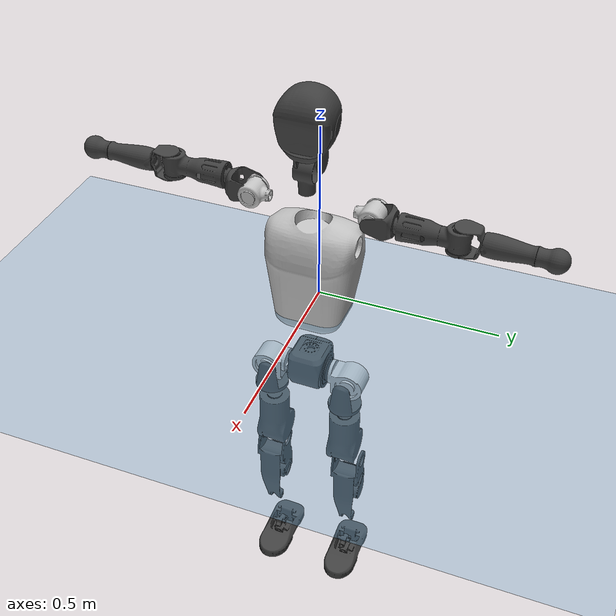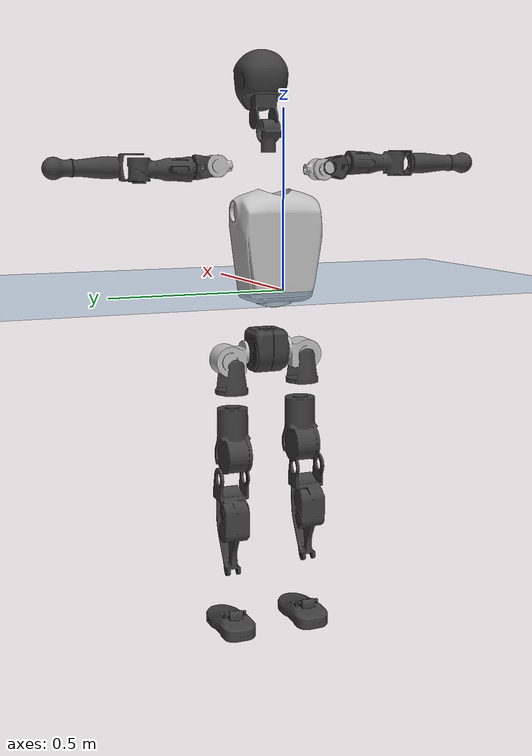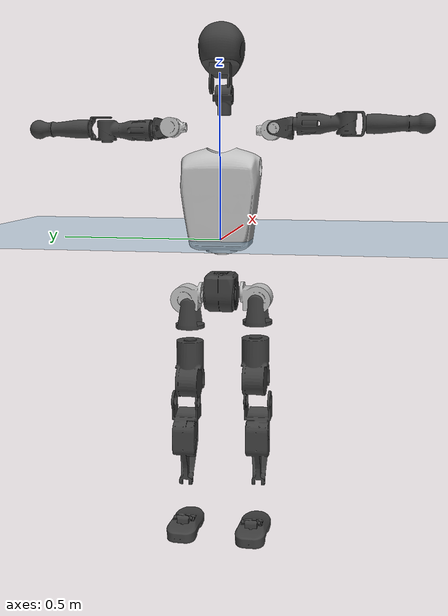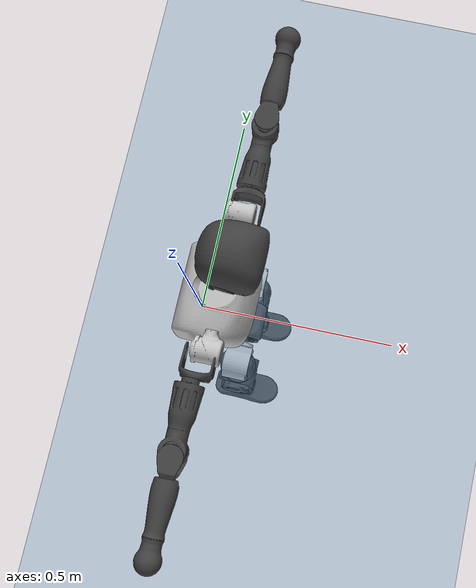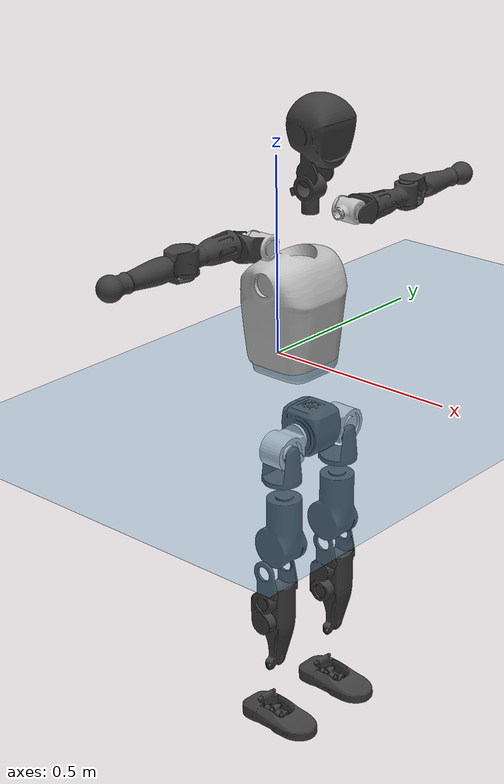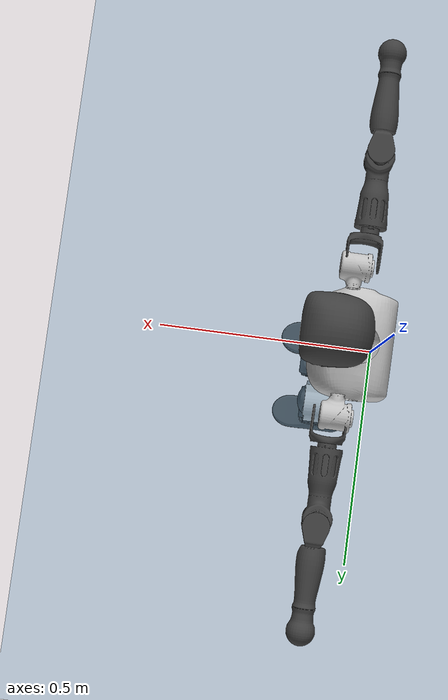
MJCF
<mujoco model="T1">
  <compiler angle="radian" assetdir="assets" balanceinertia="true" inertiafromgeom="false"/>

  <option timestep="0.005" density="1.2" viscosity="2e-05"/>

  <size nkey="1"/>

  <visual>
    <quality shadowsize="8192"/>
    <map shadowclip="0.5"/>
  </visual>

  <default>
    <default class="/">
      <joint armature="0.01" damping="0.01" frictionloss="0.1"/>
      <geom contype="0" conaffinity="0" group="1" solref="-1000 -80"/>
      <site size="0.01 0.005 0.005" group="5"/>
      <general forcelimited="true" biastype="affine" gainprm="25" biasprm="0 -25 -0.6"/>
      <default class="t1">
        <geom rgba="0.25 0.25 0.25 1"/>
        <default class="visual">
          <geom type="mesh" group="2"/>
        </default>
        <default class="collision">
          <geom group="3"/>
        </default>
        <default class="foot">
          <geom size="0.1115 0.05 0.015" type="box" condim="6" group="4" priority="1" solimp="0.015 1 0.015"/>
        </default>
        <default class="reward_collision_sphere">
          <geom group="5" rgba="1 0 0 1"/>
        </default>
      </default>
    </default>
  </default>

  <asset>
    <texture type="skybox" colorspace="auto" name="//unnamed_texture_0" builtin="gradient" rgb1="0.95 0.95 0.95" rgb2="0.95 0.95 0.95" width="100" height="600"/>
    <texture type="2d" colorspace="auto" name="texplane" builtin="checker" rgb1="0.345 0.575 0.748" rgb2="0.345 0.575 0.748" markrgb="1 1 1" width="512" height="512"/>
    <material name="MatPlane" class="/" texture="texplane" texuniform="true" texrepeat="2 2" specular="0.9"/>
    <mesh name="Trunk" class="/" file="Trunk.stl"/>
    <mesh name="H1" class="/" file="H1.stl"/>
    <mesh name="H2" class="/" file="H2.stl"/>
    <mesh name="AL1" class="/" file="AL1.stl"/>
    <mesh name="AL2" class="/" file="AL2.stl"/>
    <mesh name="AL3" class="/" file="AL3.stl"/>
    <mesh name="left_hand_link" class="/" file="left_hand_link.stl"/>
    <mesh name="AR1" class="/" file="AR1.stl"/>
    <mesh name="AR2" class="/" file="AR2.stl"/>
    <mesh name="AR3" class="/" file="AR3.stl"/>
    <mesh name="right_hand_link" class="/" file="right_hand_link.stl"/>
    <mesh name="Waist" class="/" file="Waist.stl"/>
    <mesh name="Hip_Pitch_Left" class="/" file="Hip_Pitch_Left.stl"/>
    <mesh name="Hip_Roll_Left" class="/" file="Hip_Roll_Left.stl"/>
    <mesh name="Hip_Yaw_Left" class="/" file="Hip_Yaw_Left.stl"/>
    <mesh name="Shank_Left" class="/" file="Shank_Left.stl"/>
    <mesh name="Ankle_Cross_Left" class="/" file="Ankle_Cross_Left.stl"/>
    <mesh name="left_foot_link" class="/" file="left_foot_link.stl"/>
    <mesh name="Hip_Pitch_Right" class="/" file="Hip_Pitch_Right.stl"/>
    <mesh name="Hip_Roll_Right" class="/" file="Hip_Roll_Right.stl"/>
    <mesh name="Hip_Yaw_Right" class="/" file="Hip_Yaw_Right.stl"/>
    <mesh name="Shank_Right" class="/" file="Shank_Right.stl"/>
    <mesh name="Ankle_Cross_Right" class="/" file="Ankle_Cross_Right.stl"/>
    <mesh name="right_foot_link" class="/" file="right_foot_link.stl"/>
  </asset>

  <worldbody>
    <geom name="floor" class="/" size="100 100 0.125" type="plane" group="0" material="MatPlane"/>
    <light name="toplight_shadow" class="/" pos="0 0 5" dir="0.0990148 0.0990148 -0.990148" type="directional" ambient="0.04 0.04 0.04" diffuse="0.55 0.55 0.55" specular="0.12 0.12 0.12"/>
    <light name="toplight_fill" class="/" pos="0 0 5" dir="0.0990148 0.0990148 -0.990148" type="directional" castshadow="false" ambient="0.04 0.04 0.04" diffuse="0.3 0.3 0.3" specular="0.08 0.08 0.08"/>
    <body name="trunk" childclass="t1" pos="-0.000445935 0.00499564 0.00100568" quat="0.999992 -0.0011213 -0.000812574 -0.00363577">
      <inertial pos="0.0818807 0.00312745 0.157707" quat="0.998921 0.0189988 -0.0407509 0.0116121" mass="29.7705" diaginertia="0.500061 0.117187 0.391014"/>
      <joint name="//unnamed_joint_0" type="free" armature="0" damping="0" frictionloss="0"/>
      <geom name="//unnamed_geom_1" class="visual" rgba="0.76 0.76 0.76 1" mesh="Trunk"/>
      <geom name="//unnamed_geom_2" class="collision" size="0.10231 0.136413 0.204619" pos="0.0892127 0 0.181627" type="box"/>
      <geom name="//unnamed_geom_3" class="reward_collision_sphere" size="0.156875" pos="0.0892127 0 0.151356"/>
      <geom name="//unnamed_geom_4" class="reward_collision_sphere" size="0.0204619" pos="0.0892127 0.0928153 0"/>
      <geom name="//unnamed_geom_5" class="reward_collision_sphere" size="0.0204619" pos="0.0892127 -0.0928153 0"/>
      <geom name="//unnamed_geom_6" class="reward_collision_sphere" size="0.0204619" pos="0.0892127 0.116838 0.272441"/>
      <geom name="//unnamed_geom_7" class="reward_collision_sphere" size="0.0204619" pos="0.0892127 -0.116838 0.272441"/>
      <site name="imu" pos="-0.0371454 -0.000781813 0.0363485" size="0.0136413"/>
      <camera name="track" pos="0 -2.18389 0" quat="0.707107 0.707107 0 0" mode="trackcom"/>
      <camera name="ego_camera" pos="0.181399 0 0.635695" quat="-0.5 -0.5 0.5 0.5"/>
      <body name="H1" pos="0.101441 -0.000996017 0.378607" quat="1 0.000544393 -0.00029469 7.48292e-06">
        <inertial pos="-0.000597115 -0.0025668 0.0866796" quat="0.760424 -0.0178371 -0.00232715 0.649178" mass="1.11152" diaginertia="0.00185188 0.00033107 0.00118569"/>
        <joint name="AAHead_yaw" pos="0 0 0" axis="-0.000126243 0.00201038 0.999998" range="-1.71798 1.59756" armature="0.00632603" damping="0.0127138" frictionloss="0.0672473"/>
        <geom name="//unnamed_geom_8" class="visual" mesh="H1"/>
        <body name="H2" pos="0.00401811 0.0128265 0.095364" quat="0.999998 0.000565882 0.000795934 -0.00149625">
          <inertial pos="0.00299053 0.0103606 0.16115" quat="0.982364 0.113719 -0.113059 -0.0961635" mass="1.5387" diaginertia="0.0150674 0.00348512 0.0141415"/>
          <joint name="Head_pitch" pos="0 0 0" axis="-0.00718281 -0.999897 0.012416" stiffness="0.000332846" range="-1.22138 0.3847" armature="0.00931922" damping="0.0594082" frictionloss="0.136938"/>
          <geom name="//unnamed_geom_9" class="visual" mesh="H2"/>
          <geom name="//unnamed_geom_10" class="collision" size="0.10913" pos="0.0148688 0 0.166492"/>
          <geom name="//unnamed_geom_11" class="reward_collision_sphere" size="0.122771" pos="0.0297376 0 0.151356"/>
        </body>
      </body>
      <body name="AL1" pos="0.0846865 0.117586 0.34217" quat="0.999982 -0.000688862 0.00564461 -0.00212716">
        <inertial pos="0.00544769 0.0495207 -0.000710585" quat="0.504561 0.495299 -0.504244 0.495818" mass="1.44358" diaginertia="0.0105922 0.0024425 0.00276377"/>
        <joint name="Left_Shoulder_Pitch" pos="0 0 0" axis="0.0107347 0.999281 0.036351" stiffness="0.00062099" range="-3.19567 0.994321" armature="0.0131995" damping="0.0604726" frictionloss="0.10082"/>
        <geom name="//unnamed_geom_12" class="visual" rgba="0.76 0.76 0.76 1" mesh="AL1"/>
        <body name="AL2" pos="0.0101096 0.0481274 -0.00304918" quat="1 5.73351e-05 -0.000169336 0.00012889">
          <inertial pos="0.00980067 0.0308496 0.00477812" quat="0.487794 0.511207 -0.489309 0.511176" mass="0.371762" diaginertia="0.00273971 0.000488128 0.00138291"/>
          <joint name="Left_Shoulder_Roll" pos="0 0 0" axis="-0.999999 0.00109734 0.000242321" stiffness="0.0632522" range="-1.66826 1.75569" armature="0.0060168" damping="0.0178232" frictionloss="0.138546"/>
          <geom name="//unnamed_geom_13" class="visual" mesh="AL2"/>
          <body name="AL3" pos="-0.00273602 0.0655387 -0.0054721" quat="1 0.000253645 0.000544626 0.000300635">
            <inertial pos="-0.00969825 0.103898 -0.00372629" quat="0.686657 0.726967 -0.00435689 0.00135269" mass="3.22736" diaginertia="0.0915272 0.0222485 0.00597971"/>
            <joint name="Left_Elbow_Pitch" pos="0 0 0" axis="-0.018837 -0.999731 0.0134959" stiffness="0.0186384" range="-2.03976 2.34353" armature="0.00513367" damping="0.0200369" frictionloss="0.125923"/>
            <geom name="//unnamed_geom_14" class="visual" mesh="AL3"/>
            <geom name="//unnamed_geom_15" class="collision" size="0.0409238 0.10231" pos="0 0.0545972 0" quat="0.707105 0.707108 0 0" type="cylinder"/>
            <geom name="//unnamed_geom_16" class="reward_collision_sphere" size="0.0491086"/>
            <body name="left_hand_link" pos="0.0015566 0.160043 0.00662838" quat="0.999984 -0.00379142 0.0023626 -0.0033906">
              <inertial pos="0.0114696 0.115752 -0.000578614" quat="0.712593 0.701563 0.0034114 -0.00292969" mass="0.808299" diaginertia="0.0661157 0.0119305 0.00148491"/>
              <joint name="Left_Elbow_Yaw" pos="0 0 0" axis="-0.00219265 -0.000206842 0.999998" range="-2.45497 0.234901" armature="0.013647" damping="0" frictionloss="0.147173"/>
              <geom name="//unnamed_geom_17" class="visual" mesh="left_hand_link"/>
              <geom name="//unnamed_geom_18" class="collision" size="0.0409238 0.119361" pos="0 0.141953 0" quat="0.707105 0.707108 0 0" type="cylinder"/>
              <geom name="//unnamed_geom_19" class="reward_collision_sphere" size="0.0682064"/>
              <geom name="//unnamed_geom_20" class="reward_collision_sphere" size="0.0477445" pos="0 0.120114 0"/>
              <geom name="//unnamed_geom_21" class="reward_collision_sphere" size="0.0477445" pos="0 0.234768 0"/>
            </body>
          </body>
        </body>
      </body>
      <body name="AR1" pos="0.0820807 -0.105854 0.331456" quat="0.999999 -0.000743233 -0.0009085 -0.000932978">
        <inertial pos="0.00541392 -0.0365199 0.00163305" quat="0.505844 0.518029 -0.483458 0.491971" mass="1.45219" diaginertia="0.0117269 0.0022057 0.00247205"/>
        <joint name="Right_Shoulder_Pitch" pos="0 0 0" axis="-0.0136283 -0.998908 0.0446948" stiffness="0.0617899" range="-1.20286 3.41448" armature="0.00720857" damping="0.0249218" frictionloss="0.167978"/>
        <geom name="//unnamed_geom_22" class="visual" rgba="0.76 0.76 0.76 1" mesh="AR1"/>
        <body name="AR2" pos="-0.0117112 -0.0579368 0.00584582" quat="0.999987 0.0027368 0.00430897 -0.000106175">
          <inertial pos="0.0122951 -0.0396904 0.00331517" quat="0.508945 0.504474 -0.510786 0.474951" mass="0.455555" diaginertia="0.00288965 0.000464602 0.00141779"/>
          <joint name="Right_Shoulder_Roll" pos="0 0 0" axis="-0.999982 -0.00346071 -0.00490746" range="-1.80529 1.51375" armature="0.0149184" damping="0" frictionloss="0.0502846"/>
          <geom name="//unnamed_geom_23" class="visual" mesh="AR2"/>
          <body name="AR3" pos="-0.00600208 -0.0692415 0.0128918" quat="1 -7.43809e-05 -6.568e-06 -0.000145115">
            <inertial pos="0.00140206 -0.0828991 0.00398518" quat="0.709014 0.703594 -0.0248498 -0.0404617" mass="2.63923" diaginertia="0.0956735 0.0205943 0.00441655"/>
            <joint name="Right_Elbow_Pitch" pos="0 0 0" axis="0.0444814 0.998814 0.0197763" range="-2.07513 2.38782" armature="0.0211626" damping="0.0108258" frictionloss="0.0910376"/>
            <geom name="//unnamed_geom_24" class="visual" mesh="AR3"/>
            <geom name="//unnamed_geom_25" class="collision" size="0.0409238 0.10231" pos="0 -0.0545972 0" quat="0.707105 0.707108 0 0" type="cylinder"/>
            <geom name="//unnamed_geom_26" class="reward_collision_sphere" size="0.0491086"/>
            <body name="right_hand_link" pos="0.000711683 -0.160999 -0.00121717" quat="0.99999 -0.00208812 0.000726083 0.00377101">
              <inertial pos="0.00112762 -0.115065 -0.00953843" quat="0.706332 0.70788 -0.000121785 -0.000810727" mass="0.885166" diaginertia="0.062393 0.0135344 0.00180973"/>
              <joint name="Right_Elbow_Yaw" pos="0 0 0" axis="-0.0108627 -0.0296519 0.999501" range="-0.0206621 2.3049" armature="0.00658318" damping="0.0705741" frictionloss="0.0842075"/>
              <geom name="//unnamed_geom_27" class="visual" mesh="right_hand_link"/>
              <geom name="//unnamed_geom_28" class="collision" size="0.0409238 0.119361" pos="0 -0.141953 0" quat="0.707105 0.707108 0 0" type="cylinder"/>
              <geom name="//unnamed_geom_29" class="reward_collision_sphere" size="0.0682064"/>
              <geom name="//unnamed_geom_30" class="reward_collision_sphere" size="0.0477445" pos="0 -0.120114 0"/>
              <geom name="//unnamed_geom_31" class="reward_collision_sphere" size="0.0477445" pos="0 -0.234768 0"/>
            </body>
          </body>
        </body>
      </body>
      <body name="Waist" pos="0.0964346 0.0089495 -0.18645" quat="1 7.19222e-05 -0.000122996 -0.000430982">
        <inertial pos="0.0135093 0.00107422 0.0106885" quat="0.983718 0.0381625 -0.173504 -0.0271907" mass="7.53164" diaginertia="0.0450265 0.00940428 0.0427738"/>
        <joint name="Waist" pos="0 0 0" axis="0.0219725 -0.0439613 0.998792" stiffness="0.0277417" range="-1.58725 1.77221" armature="0.0147753" damping="0" frictionloss="0.0717181"/>
        <geom name="//unnamed_geom_32" class="visual" mesh="Waist"/>
        <body name="Hip_Pitch_Left" pos="0.00146462 0.118044 0.0010474" quat="0.999997 0.000501743 0.00183523 -0.00156817">
          <inertial pos="0.0007257 -0.0034463 -0.0283658" quat="0.976474 0.215133 0.0141568 0.00389993" mass="2.47548" diaginertia="0.013069 0.00199021 0.00954826"/>
          <joint name="Left_Hip_Pitch" pos="0 0 0" axis="-0.0434207 0.997927 -0.0474984" stiffness="0.0567374" range="-1.77683 1.34319" armature="0.0102973" damping="0.0524465" frictionloss="0.126181"/>
          <geom name="//unnamed_geom_33" class="visual" rgba="0.76 0.76 0.76 1" mesh="Hip_Pitch_Left"/>
          <body name="Hip_Roll_Left" pos="0.00254534 -0.0129611 -0.0394705" quat="0.999981 0.000860248 0.00574457 0.00228465">
            <inertial pos="0.0102391 0.00160824 -0.0820408" quat="0.698868 -0.0118197 -0.00355223 0.715144" mass="1.13713" diaginertia="0.012684 0.00274776 0.00466845"/>
            <joint name="Left_Hip_Roll" pos="0 0 0" axis="-0.998414 0.0319608 -0.0463528" range="-1.64726 0.163822" armature="0.0168665" damping="0.00236059" frictionloss="0.142024"/>
            <geom name="//unnamed_geom_34" class="visual" mesh="Hip_Roll_Left"/>
            <geom name="//unnamed_geom_35" class="reward_collision_sphere" size="0.075027"/>
            <body name="Hip_Yaw_Left" pos="-0.00360787 -0.000128142 -0.11997" quat="1 -8.48026e-05 0.000132984 -2.48146e-05">
              <inertial pos="-0.0098779 -0.00185576 -0.135525" quat="0.713165 -0.068928 0.00416354 0.697586" mass="6.51676" diaginertia="0.188267 0.0444245 0.0232169"/>
              <joint name="Left_Hip_Yaw" pos="0 0 0" axis="0.00626502 0.00152931 -0.999979" range="-0.848934 1.04401" armature="0.0139001" damping="0" frictionloss="0.141057"/>
              <geom name="//unnamed_geom_36" class="visual" mesh="Hip_Yaw_Left"/>
              <geom name="//unnamed_geom_37" class="collision" size="0.0682064 0.10913" type="cylinder"/>
              <body name="Shank_Left" pos="-0.0178233 0.0101848 -0.20065" quat="1 0.00052491 0.000353166 -0.000771798">
                <inertial pos="-0.0053991 0.00839139 -0.189092" quat="0.999627 -0.00524694 -0.0035008 0.0265641" mass="3.77897" diaginertia="0.233038 0.0485902 0.0154369"/>
                <joint name="Left_Knee_Pitch" pos="0 0 0" axis="-0.00432051 0.999883 0.0147027" range="-0.0676595 2.43895" armature="0.00721122" damping="0.0452969" frictionloss="0.147006"/>
                <geom name="//unnamed_geom_38" class="visual" mesh="Shank_Left"/>
                <geom name="//unnamed_geom_39" class="collision" size="0.0682064 0.10231" pos="0 0 -0.181627" type="cylinder"/>
                <geom name="//unnamed_geom_40" class="reward_collision_sphere" size="0.0886683"/>
                <body name="Ankle_Cross_Left" pos="0.000690806 -0.00746978 -0.41485" quat="0.999987 0.00159464 -0.00322252 0.00359272">
                  <inertial pos="-0.000925357 0.0118936 -0.0121101" quat="0.44734 0.535235 0.579736 0.421089" mass="0.182455" diaginertia="0.000202786 3.45364e-05 8.04233e-05"/>
                  <joint name="Left_Ankle_Pitch" pos="0 0 0" axis="0.0266612 0.99946 -0.0192123" stiffness="0.00680568" range="-0.891152 0.298746" armature="0.0154803" damping="0" frictionloss="0.141256"/>
                  <geom name="//unnamed_geom_41" class="visual" mesh="Ankle_Cross_Left"/>
                  <body name="left_foot_link" pos="0.00904122 0.0115994 -0.0153013" quat="0.999999 -0.000514232 -0.00059894 -0.000650348">
                    <inertial pos="-0.0100923 -0.00119459 -0.0261271" quat="-0.000328043 0.626961 -0.00182098 0.779049" mass="1.78856" diaginertia="0.0202624 0.00374806 0.0184659"/>
                    <joint name="Left_Ankle_Roll" pos="0 0 0" axis="-0.99996 -0.00730092 0.00525661" range="-0.478279 0.442741" armature="0.0209087" damping="0.0371656" frictionloss="0.125251"/>
                    <geom name="//unnamed_geom_42" class="visual" mesh="left_foot_link"/>
                    <geom name="left_foot" class="foot" size="0.117261 0.089601 0.0191371" pos="0.0148688 0 -0.0227034"/>
                    <geom name="//unnamed_geom_44" class="reward_collision_sphere" size="0.0709346" pos="0.0148688 0 -0.0227034"/>
                    <geom name="//unnamed_geom_45" class="reward_collision_sphere" size="0.0409238" pos="0.141253 -0.0251147 -0.0227034"/>
                    <geom name="//unnamed_geom_46" class="reward_collision_sphere" size="0.0409238" pos="-0.104081 -0.0251147 -0.0227034"/>
                    <site name="left_foot" class="foot" pos="0.0148688 0 -0.0227034" size="0.0136413"/>
                  </body>
                </body>
              </body>
            </body>
          </body>
        </body>
        <body name="Hip_Pitch_Right" pos="0.00836428 -0.119097 0.0066709" quat="0.999981 -0.00456282 -0.00185577 -0.0036436">
          <inertial pos="0.00140246 0.0212241 -0.0275672" quat="0.968328 -0.248121 0.0104227 -0.025841" mass="2.70947" diaginertia="0.01488 0.00261732 0.0116626"/>
          <joint name="Right_Hip_Pitch" pos="0 0 0" axis="-0.000673422 -0.999998 0.00181522" stiffness="0.0140219" range="-1.41666 1.81426" armature="0.0168735" damping="0.0195408" frictionloss="0.0580785"/>
          <geom name="//unnamed_geom_47" class="visual" rgba="0.76 0.76 0.76 1" mesh="Hip_Pitch_Right"/>
          <body name="Hip_Roll_Right" pos="-0.000647099 0.00344893 -0.0267638" quat="1 -0.000603453 -0.000126053 0.000657271">
            <inertial pos="0.0120496 -0.0122767 -0.069646" quat="0.706766 0.0142287 -0.0123525 0.707196" mass="0.92573" diaginertia="0.011761 0.00230278 0.0040107"/>
            <joint name="Right_Hip_Roll" pos="0 0 0" axis="-1 -0.000439132 -0.000836443" range="-0.206492 1.55248" armature="0.010595" damping="0.0074679" frictionloss="0.137713"/>
            <geom name="//unnamed_geom_48" class="visual" mesh="Hip_Roll_Right"/>
            <geom name="//unnamed_geom_49" class="reward_collision_sphere" size="0.075027"/>
            <body name="Hip_Yaw_Right" pos="-0.000579181 0.00668214 -0.123638" quat="0.999998 0.00207679 -0.00050677 -0.000453866">
              <inertial pos="-0.0171091 0.00657527 -0.136426" quat="0.714467 -0.0310288 -0.0343349 0.698137" mass="5.69245" diaginertia="0.172343 0.0396604 0.0199143"/>
              <joint name="Right_Hip_Yaw" pos="0 0 0" axis="0.000595012 0.00297755 -0.999995" range="-0.992819 1.18306" armature="0.0222646" damping="0" frictionloss="0.0628074"/>
              <geom name="//unnamed_geom_50" class="visual" mesh="Hip_Yaw_Right"/>
              <geom name="//unnamed_geom_51" class="collision" size="0.0682064 0.10913" type="cylinder"/>
              <body name="Shank_Right" pos="-0.0240511 -0.0110862 -0.203796" quat="0.999987 -0.00332567 0.00314789 0.00225395">
                <inertial pos="-0.00773463 -0.00839684 -0.197165" quat="0.999593 -0.0253619 -0.0123692 -0.00416944" mass="5.03259" diaginertia="0.275209 0.0536977 0.0131435"/>
                <joint name="Right_Knee_Pitch" pos="0 0 0" axis="-0.0469734 -0.998853 0.00930821" stiffness="0.00120985" range="-2.52504 0.177236" armature="0.0140026" damping="0" frictionloss="0.159616"/>
                <geom name="//unnamed_geom_52" class="visual" mesh="Shank_Right"/>
                <geom name="//unnamed_geom_53" class="collision" size="0.0682064 0.10231" pos="0 0 -0.181627" type="cylinder"/>
                <geom name="//unnamed_geom_54" class="reward_collision_sphere" size="0.0886683"/>
                <body name="Ankle_Cross_Right" pos="-0.00530855 0.00927276 -0.426635" quat="0.999979 -0.00257016 -0.000151864 -0.00595749">
                  <inertial pos="-0.00222059 0.00310401 -0.0202657" quat="0.451685 0.559676 0.554003 0.419314" mass="0.188658" diaginertia="0.000206305 3.98766e-05 0.000100501"/>
                  <joint name="Right_Ankle_Pitch" pos="0 0 0" axis="0.00843031 -0.999879 -0.0130713" stiffness="0.000574856" range="-0.16609 0.881214" armature="0.0143938" damping="0" frictionloss="0.13684"/>
                  <geom name="//unnamed_geom_55" class="visual" mesh="Ankle_Cross_Right"/>
                  <body name="right_foot_link" pos="0.00253589 0.00979343 -0.0134189" quat="1 -0.000459644 0.000212746 0.000263409">
                    <inertial pos="-0.00165526 -0.00297743 -0.00485278" quat="-0.00718629 0.621901 -0.00344602 0.783055" mass="1.79946" diaginertia="0.0197924 0.00366573 0.0189009"/>
                    <joint name="Right_Ankle_Roll" pos="0 0 0" axis="-0.999326 0.0251805 -0.0267007" stiffness="0.0319657" range="-0.699014 0.442153" armature="0.00696767" damping="0.0120392" frictionloss="0.18676"/>
                    <geom name="//unnamed_geom_56" class="visual" mesh="right_foot_link"/>
                    <geom name="right_foot" class="foot" size="0.137752 0.0879235 0.0189596" pos="0.0148688 0 -0.0227034"/>
                    <geom name="//unnamed_geom_58" class="reward_collision_sphere" size="0.0545651"/>
                    <geom name="//unnamed_geom_59" class="reward_collision_sphere" size="0.0409238" pos="0.0148688 0 -0.0227034"/>
                    <geom name="//unnamed_geom_60" class="reward_collision_sphere" size="0.0409238" pos="0.141253 0.0251147 -0.0227034"/>
                    <geom name="//unnamed_geom_61" class="reward_collision_sphere" size="0.0409238" pos="-0.104081 0.0251147 -0.0227034"/>
                    <site name="right_foot" class="foot" pos="0.0148688 0 -0.0227034" size="0.0136413"/>
                  </body>
                </body>
              </body>
            </body>
          </body>
        </body>
      </body>
    </body>
  </worldbody>

  <contact>
    <pair class="/" geom1="floor" geom2="left_foot" name="//unnamed_contact_0"/>
    <pair class="/" geom1="floor" geom2="right_foot" name="//unnamed_contact_1"/>
  </contact>

  <actuator>
    <general name="AAHead_yaw" class="/" joint="AAHead_yaw" forcerange="-11.6821 11.6821" gainprm="38.5935" biasprm="0 -38.5935 -0.874272"/>
    <general name="Head_pitch" class="/" joint="Head_pitch" forcerange="-7.00538 7.00538" gainprm="38.5935" biasprm="0 -38.5935 -0.874272"/>
    <general name="Left_Shoulder_Pitch" class="/" joint="Left_Shoulder_Pitch" forcerange="-24.6036 24.6036" gainprm="38.5935" biasprm="0 -38.5935 -0.874272"/>
    <general name="Left_Shoulder_Roll" class="/" joint="Left_Shoulder_Roll" forcerange="-15.724 15.724" gainprm="38.5935" biasprm="0 -38.5935 -0.874272"/>
    <general name="Left_Elbow_Pitch" class="/" joint="Left_Elbow_Pitch" forcerange="-24.3552 24.3552" gainprm="38.5935" biasprm="0 -38.5935 -0.874272"/>
    <general name="Left_Elbow_Yaw" class="/" joint="Left_Elbow_Yaw" forcerange="-27.1631 27.1631" gainprm="38.5935" biasprm="0 -38.5935 -0.874272"/>
    <general name="Right_Shoulder_Pitch" class="/" joint="Right_Shoulder_Pitch" forcerange="-25.4621 25.4621" gainprm="38.5935" biasprm="0 -38.5935 -0.874272"/>
    <general name="Right_Shoulder_Roll" class="/" joint="Right_Shoulder_Roll" forcerange="-27.4954 27.4954" gainprm="38.5935" biasprm="0 -38.5935 -0.874272"/>
    <general name="Right_Elbow_Pitch" class="/" joint="Right_Elbow_Pitch" forcerange="-23.7183 23.7183" gainprm="38.5935" biasprm="0 -38.5935 -0.874272"/>
    <general name="Right_Elbow_Yaw" class="/" joint="Right_Elbow_Yaw" forcerange="-25.5907 25.5907" gainprm="38.5935" biasprm="0 -38.5935 -0.874272"/>
    <general name="Waist" class="/" joint="Waist" forcerange="-55.7867 55.7867" gainprm="38.5935" biasprm="0 -38.5935 -0.874272"/>
    <general name="Left_Hip_Pitch" class="/" joint="Left_Hip_Pitch" forcerange="-67.6635 67.6635" gainprm="38.5935" biasprm="0 -38.5935 -0.874272"/>
    <general name="Left_Hip_Roll" class="/" joint="Left_Hip_Roll" forcerange="-38.5017 38.5017" gainprm="38.5935" biasprm="0 -38.5935 -0.874272"/>
    <general name="Left_Hip_Yaw" class="/" joint="Left_Hip_Yaw" forcerange="-42.4646 42.4646" gainprm="38.5935" biasprm="0 -38.5935 -0.874272"/>
    <general name="Left_Knee_Pitch" class="/" joint="Left_Knee_Pitch" forcerange="-108.841 108.841" gainprm="38.5935" biasprm="0 -38.5935 -0.874272"/>
    <general name="Left_Ankle_Pitch" class="/" joint="Left_Ankle_Pitch" forcerange="-14.92 14.92" gainprm="38.5935" biasprm="0 -38.5935 -0.874272"/>
    <general name="Left_Ankle_Roll" class="/" joint="Left_Ankle_Roll" forcerange="-30.3295 30.3295" gainprm="38.5935" biasprm="0 -38.5935 -0.874272"/>
    <general name="Right_Hip_Pitch" class="/" joint="Right_Hip_Pitch" forcerange="-63.9436 63.9436" gainprm="38.5935" biasprm="0 -38.5935 -0.874272"/>
    <general name="Right_Hip_Roll" class="/" joint="Right_Hip_Roll" forcerange="-54.5542 54.5542" gainprm="38.5935" biasprm="0 -38.5935 -0.874272"/>
    <general name="Right_Hip_Yaw" class="/" joint="Right_Hip_Yaw" forcerange="-24.3875 24.3875" gainprm="38.5935" biasprm="0 -38.5935 -0.874272"/>
    <general name="Right_Knee_Pitch" class="/" joint="Right_Knee_Pitch" forcerange="-75.8914 75.8914" gainprm="38.5935" biasprm="0 -38.5935 -0.874272"/>
    <general name="Right_Ankle_Pitch" class="/" joint="Right_Ankle_Pitch" forcerange="-26.1862 26.1862" gainprm="38.5935" biasprm="0 -38.5935 -0.874272"/>
    <general name="Right_Ankle_Roll" class="/" joint="Right_Ankle_Roll" forcerange="-19.3492 19.3492" gainprm="38.5935" biasprm="0 -38.5935 -0.874272"/>
  </actuator>

  <sensor>
    <gyro site="imu" name="imu_angular_velocity"/>
    <velocimeter site="imu" name="imu_linear_velocity"/>
    <framelinvel objtype="site" objname="left_foot" name="left_foot_global_linear_velocity"/>
    <framelinvel objtype="site" objname="right_foot" name="right_foot_global_linear_velocity"/>
  </sensor>

  <keyframe>
    <key name="home" qpos="0 0 0.6385 1 0 0 0 0 0 0 1.4 0 -0.4 0 -1.4 0 0.4 0 -0.4 0 0 0.8 -0.4 0 0.4 0 0 -0.8 0.4 0"/>
  </keyframe>
</mujoco>
